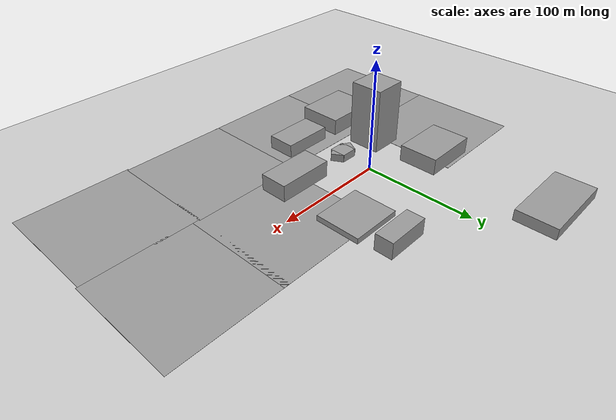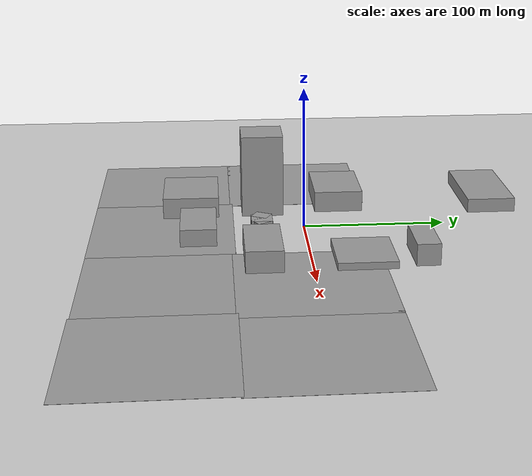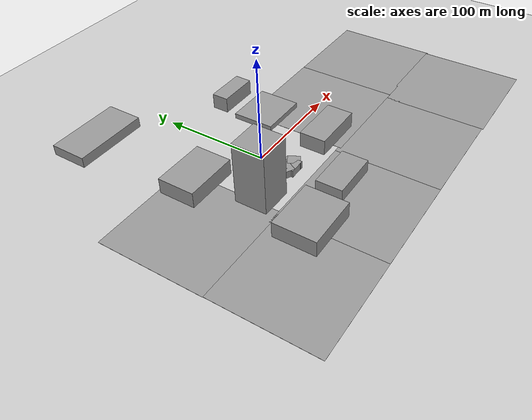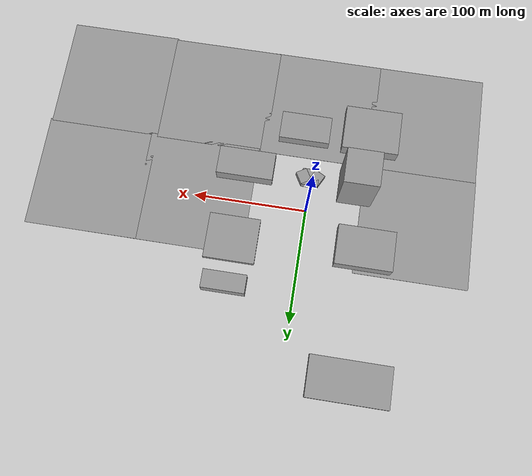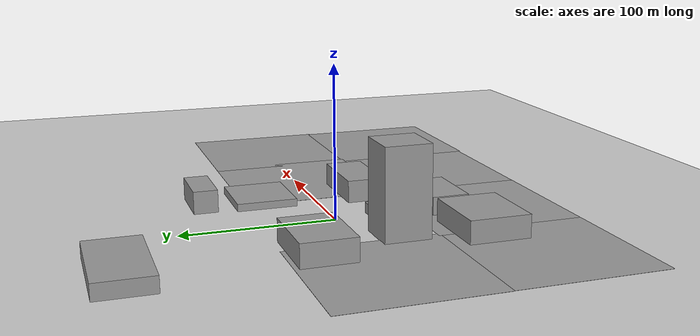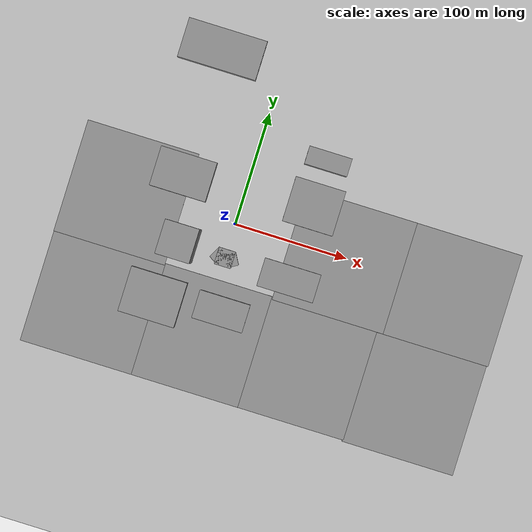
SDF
<sdf version="1.6">
 <world name="default">
  <model name="ground_plane">
   <static>1</static>
   <link name="link">
    <collision name="collision">
     <geometry><plane><normal>0 0 1</normal><size>100 100</size></plane></geometry>
     <surface><friction><ode><mu>100</mu><mu2>50</mu2></ode></friction></surface>
    </collision>
    <visual name="visual">
     <cast_shadows>0</cast_shadows>
     <geometry><plane><normal>0 0 1</normal><size>100 100</size></plane></geometry>
     <material>
      <script><uri>file://media/materials/scripts/gazebo.material</uri><name>Gazebo/Grey</name></script>
     </material>
    </visual>
   </link>
  </model>
  <model name="k2_kait_0">
   <link name="link_3">
    <inertial>
     <mass>1</mass>
     <inertia>
      <ixx>0.166667</ixx>
      <ixy>0</ixy>
      <ixz>0</ixz>
      <iyy>0.166667</iyy>
      <iyz>0</iyz>
      <izz>0.166667</izz>
     </inertia>
    </inertial>
    <visual name="visual">
     <pose>0 0 7.5 0 -0 0</pose>
     <geometry><box><size>50 35 15</size></box></geometry>
     <material>
      <lighting>1</lighting>
      <script><uri>file://media/materials/scripts/gazebo.material</uri><name>Gazebo/Grey</name></script>
      <shader type="vertex"><normal_map>__default__</normal_map></shader>
      <ambient>0.3 0.3 0.3 1</ambient>
      <diffuse>0.7 0.7 0.7 1</diffuse>
      <specular>0.01 0.01 0.01 1</specular>
      <emissive>0 0 0 1</emissive>
     </material>
    </visual>
    <collision name="collision">
     <geometry><box><size>1 1 1</size></box></geometry>
     <surface>
      <friction>
       <ode><mu>1</mu><mu2>1</mu2><fdir1>0 0 0</fdir1><slip1>0</slip1><slip2>0</slip2></ode>
       <torsional>
        <coefficient>1</coefficient>
        <patch_radius>0</patch_radius>
        <surface_radius>0</surface_radius>
        <use_patch_radius>1</use_patch_radius>
        <ode><slip>0</slip></ode>
       </torsional>
      </friction>
      <bounce><restitution_coefficient>0</restitution_coefficient><threshold>1e+06</threshold></bounce>
      <contact>
       <collide_without_contact>0</collide_without_contact>
       <collide_without_contact_bitmask>1</collide_without_contact_bitmask>
       <collide_bitmask>1</collide_bitmask>
       <ode>
        <soft_cfm>0</soft_cfm>
        <soft_erp>0.2</soft_erp>
        <kp>1e+13</kp>
        <kd>1</kd>
        <max_vel>0.01</max_vel>
        <min_depth>0</min_depth>
       </ode>
       <bullet>
        <split_impulse>1</split_impulse>
        <split_impulse_penetration_threshold>-0.01</split_impulse_penetration_threshold>
        <soft_cfm>0</soft_cfm>
        <soft_erp>0.2</soft_erp>
        <kp>1e+13</kp>
        <kd>1</kd>
       </bullet>
      </contact>
     </surface>
    </collision>
   </link>
   <static>0</static>
   <pose>-55 28 0 0 -0 0</pose>
  </model>
  <model name="sennsinn_test">
   <link name="link_6">
    <inertial>
     <mass>1</mass>
     <inertia>
      <ixx>0.166667</ixx>
      <ixy>0</ixy>
      <ixz>0</ixz>
      <iyy>0.166667</iyy>
      <iyz>0</iyz>
      <izz>0.166667</izz>
     </inertia>
    </inertial>
    <pose>-0.093395 0.01046 -0 0 -0 0</pose>
    <visual name="visual">
     <pose>0 0 3.5 0 -0 0</pose>
     <geometry><box><size>15 15 7</size></box></geometry>
     <material>
      <lighting>1</lighting>
      <script><uri>file://media/materials/scripts/gazebo.material</uri><name>Gazebo/Grey</name></script>
      <shader type="vertex"><normal_map>__default__</normal_map></shader>
      <ambient>0.3 0.3 0.3 1</ambient>
      <diffuse>0.7 0.7 0.7 1</diffuse>
      <specular>0.01 0.01 0.01 1</specular>
      <emissive>0 0 0 1</emissive>
     </material>
    </visual>
    <collision name="collision">
     <geometry><box><size>1 1 1</size></box></geometry>
     <surface>
      <friction>
       <ode><mu>1</mu><mu2>1</mu2><fdir1>0 0 0</fdir1><slip1>0</slip1><slip2>0</slip2></ode>
       <torsional>
        <coefficient>1</coefficient>
        <patch_radius>0</patch_radius>
        <surface_radius>0</surface_radius>
        <use_patch_radius>1</use_patch_radius>
        <ode><slip>0</slip></ode>
       </torsional>
      </friction>
      <bounce><restitution_coefficient>0</restitution_coefficient><threshold>1e+06</threshold></bounce>
      <contact>
       <collide_without_contact>0</collide_without_contact>
       <collide_without_contact_bitmask>1</collide_without_contact_bitmask>
       <collide_bitmask>1</collide_bitmask>
       <ode>
        <soft_cfm>0</soft_cfm>
        <soft_erp>0.2</soft_erp>
        <kp>1e+13</kp>
        <kd>1</kd>
        <max_vel>0.01</max_vel>
        <min_depth>0</min_depth>
       </ode>
       <bullet>
        <split_impulse>1</split_impulse>
        <split_impulse_penetration_threshold>-0.01</split_impulse_penetration_threshold>
        <soft_cfm>0</soft_cfm>
        <soft_erp>0.2</soft_erp>
        <kp>1e+13</kp>
        <kd>1</kd>
       </bullet>
      </contact>
     </surface>
    </collision>
   </link>
   <link name="link_7">
    <inertial>
     <mass>0.568879</mass>
     <inertia>
      <ixx>0.0627481</ixx>
      <ixy>0</ixy>
      <ixz>0</ixz>
      <iyy>0.0948131</iyy>
      <iyz>0</iyz>
      <izz>0.0627481</izz>
     </inertia>
    </inertial>
    <pose>5.89891 -0.113506 0 0 -0 0.523599</pose>
    <visual name="visual">
     <pose>0 0 3.5 0 -0 0</pose>
     <geometry><box><size>10 11.3774 7</size></box></geometry>
     <material>
      <lighting>1</lighting>
      <script><uri>file://media/materials/scripts/gazebo.material</uri><name>Gazebo/Grey</name></script>
      <shader type="vertex"><normal_map>__default__</normal_map></shader>
      <ambient>0.3 0.3 0.3 1</ambient>
      <diffuse>0.7 0.7 0.7 1</diffuse>
      <specular>0.01 0.01 0.01 1</specular>
      <emissive>0 0 0 1</emissive>
     </material>
    </visual>
    <collision name="collision">
     <geometry><box><size>1 0.568874 1</size></box></geometry>
     <surface>
      <friction>
       <ode><mu>1</mu><mu2>1</mu2><fdir1>0 0 0</fdir1><slip1>0</slip1><slip2>0</slip2></ode>
       <torsional>
        <coefficient>1</coefficient>
        <patch_radius>0</patch_radius>
        <surface_radius>0</surface_radius>
        <use_patch_radius>1</use_patch_radius>
        <ode><slip>0</slip></ode>
       </torsional>
      </friction>
      <bounce><restitution_coefficient>0</restitution_coefficient><threshold>1e+06</threshold></bounce>
      <contact>
       <collide_without_contact>0</collide_without_contact>
       <collide_without_contact_bitmask>1</collide_without_contact_bitmask>
       <collide_bitmask>1</collide_bitmask>
       <ode>
        <soft_cfm>0</soft_cfm>
        <soft_erp>0.2</soft_erp>
        <kp>1e+13</kp>
        <kd>1</kd>
        <max_vel>0.01</max_vel>
        <min_depth>0</min_depth>
       </ode>
       <bullet>
        <split_impulse>1</split_impulse>
        <split_impulse_penetration_threshold>-0.01</split_impulse_penetration_threshold>
        <soft_cfm>0</soft_cfm>
        <soft_erp>0.2</soft_erp>
        <kp>1e+13</kp>
        <kd>1</kd>
       </bullet>
      </contact>
     </surface>
    </collision>
   </link>
   <link name="link_7_clone">
    <inertial>
     <mass>0.587453</mass>
     <inertia>
      <ixx>0.0658484</ixx>
      <ixy>0</ixy>
      <ixz>0</ixz>
      <iyy>0.0979089</iyy>
      <iyz>0</iyz>
      <izz>0.0658484</izz>
     </inertia>
    </inertial>
    <pose>-5.78113 0.08849 -0 0 -0 -0.487185</pose>
    <visual name="visual">
     <pose>0 0 3.5 0 -0 0</pose>
     <geometry><box><size>10 11.7589 7</size></box></geometry>
     <material>
      <lighting>1</lighting>
      <script><uri>file://media/materials/scripts/gazebo.material</uri><name>Gazebo/Grey</name></script>
      <shader type="vertex"><normal_map>__default__</normal_map></shader>
      <ambient>0.3 0.3 0.3 1</ambient>
      <diffuse>0.7 0.7 0.7 1</diffuse>
      <specular>0.01 0.01 0.01 1</specular>
      <emissive>0 0 0 1</emissive>
     </material>
    </visual>
    <collision name="collision">
     <geometry><box><size>1 0.587448 1</size></box></geometry>
     <surface>
      <friction>
       <ode><mu>1</mu><mu2>1</mu2><fdir1>0 0 0</fdir1><slip1>0</slip1><slip2>0</slip2></ode>
       <torsional>
        <coefficient>1</coefficient>
        <patch_radius>0</patch_radius>
        <surface_radius>0</surface_radius>
        <use_patch_radius>1</use_patch_radius>
        <ode><slip>0</slip></ode>
       </torsional>
      </friction>
      <bounce><restitution_coefficient>0</restitution_coefficient><threshold>1e+06</threshold></bounce>
      <contact>
       <collide_without_contact>0</collide_without_contact>
       <collide_without_contact_bitmask>1</collide_without_contact_bitmask>
       <collide_bitmask>1</collide_bitmask>
       <ode>
        <soft_cfm>0</soft_cfm>
        <soft_erp>0.2</soft_erp>
        <kp>1e+13</kp>
        <kd>1</kd>
        <max_vel>0.01</max_vel>
        <min_depth>0</min_depth>
       </ode>
       <bullet>
        <split_impulse>1</split_impulse>
        <split_impulse_penetration_threshold>-0.01</split_impulse_penetration_threshold>
        <soft_cfm>0</soft_cfm>
        <soft_erp>0.2</soft_erp>
        <kp>1e+13</kp>
        <kd>1</kd>
       </bullet>
      </contact>
     </surface>
    </collision>
   </link>
   <static>0</static>
   <pose>0.08699 -29.9717 0.499996 0 -0 0</pose>
  </model>
  <model name="K4_ver1.1">
   <link name="link_0">
    <inertial>
     <mass>1</mass>
     <inertia>
      <ixx>0.166667</ixx>
      <ixy>0</ixy>
      <ixz>0</ixz>
      <iyy>0.166667</iyy>
      <iyz>0</iyz>
      <izz>0.166667</izz>
     </inertia>
    </inertial>
    <pose>18.3964 -92.7337 0 0 -0 0</pose>
    <visual name="visual">
     <pose>0 0 6 0 -0 0</pose>
     <geometry><box><size>45 25 12</size></box></geometry>
     <material>
      <lighting>1</lighting>
      <script><uri>file://media/materials/scripts/gazebo.material</uri><name>Gazebo/Grey</name></script>
      <shader type="vertex"><normal_map>__default__</normal_map></shader>
      <ambient>0.3 0.3 0.3 1</ambient>
      <diffuse>0.7 0.7 0.7 1</diffuse>
      <specular>0.01 0.01 0.01 1</specular>
      <emissive>0 0 0 1</emissive>
     </material>
    </visual>
    <collision name="collision">
     <geometry><box><size>1 1 1</size></box></geometry>
     <surface>
      <friction>
       <ode><mu>1</mu><mu2>1</mu2><fdir1>0 0 0</fdir1><slip1>0</slip1><slip2>0</slip2></ode>
       <torsional>
        <coefficient>1</coefficient>
        <patch_radius>0</patch_radius>
        <surface_radius>0</surface_radius>
        <use_patch_radius>1</use_patch_radius>
        <ode><slip>0</slip></ode>
       </torsional>
      </friction>
      <bounce><restitution_coefficient>0</restitution_coefficient><threshold>1e+06</threshold></bounce>
      <contact>
       <collide_without_contact>0</collide_without_contact>
       <collide_without_contact_bitmask>1</collide_without_contact_bitmask>
       <collide_bitmask>1</collide_bitmask>
       <ode>
        <soft_cfm>0</soft_cfm>
        <soft_erp>0.2</soft_erp>
        <kp>1e+13</kp>
        <kd>1</kd>
        <max_vel>0.01</max_vel>
        <min_depth>0</min_depth>
       </ode>
       <bullet>
        <split_impulse>1</split_impulse>
        <split_impulse_penetration_threshold>-0.01</split_impulse_penetration_threshold>
        <soft_cfm>0</soft_cfm>
        <soft_erp>0.2</soft_erp>
        <kp>1e+13</kp>
        <kd>1</kd>
       </bullet>
      </contact>
     </surface>
    </collision>
   </link>
   <static>0</static>
   <pose>-7.94214 18.1369 0 0 -0 0</pose>
  </model>
  <model name="D1_ver1.1">
   <link name="link_2">
    <inertial>
     <mass>1</mass>
     <inertia>
      <ixx>0.166667</ixx>
      <ixy>0</ixy>
      <ixz>0</ixz>
      <iyy>0.166667</iyy>
      <iyz>0</iyz>
      <izz>0.166667</izz>
     </inertia>
    </inertial>
    <pose>-1e-05 -3.9e-05 0 0 -0 0</pose>
    <visual name="visual">
     <pose>0 0 2.5 0 -0 0</pose>
     <geometry><box><size>45 40 5</size></box></geometry>
     <material>
      <lighting>1</lighting>
      <script><uri>file://media/materials/scripts/gazebo.material</uri><name>Gazebo/Grey</name></script>
      <shader type="vertex"><normal_map>__default__</normal_map></shader>
      <ambient>0.3 0.3 0.3 1</ambient>
      <diffuse>0.7 0.7 0.7 1</diffuse>
      <specular>0.01 0.01 0.01 1</specular>
      <emissive>0 0 0 1</emissive>
     </material>
    </visual>
    <collision name="collision">
     <geometry><box><size>1 1 1</size></box></geometry>
     <surface>
      <friction>
       <ode><mu>1</mu><mu2>1</mu2><fdir1>0 0 0</fdir1><slip1>0</slip1><slip2>0</slip2></ode>
       <torsional>
        <coefficient>1</coefficient>
        <patch_radius>0</patch_radius>
        <surface_radius>0</surface_radius>
        <use_patch_radius>1</use_patch_radius>
        <ode><slip>0</slip></ode>
       </torsional>
      </friction>
      <bounce><restitution_coefficient>0</restitution_coefficient><threshold>1e+06</threshold></bounce>
      <contact>
       <collide_without_contact>0</collide_without_contact>
       <collide_without_contact_bitmask>1</collide_without_contact_bitmask>
       <collide_bitmask>1</collide_bitmask>
       <ode>
        <soft_cfm>0</soft_cfm>
        <soft_erp>0.2</soft_erp>
        <kp>1e+13</kp>
        <kd>1</kd>
        <max_vel>0.01</max_vel>
        <min_depth>0</min_depth>
       </ode>
       <bullet>
        <split_impulse>1</split_impulse>
        <split_impulse_penetration_threshold>-0.01</split_impulse_penetration_threshold>
        <soft_cfm>0</soft_cfm>
        <soft_erp>0.2</soft_erp>
        <kp>1e+13</kp>
        <kd>1</kd>
       </bullet>
      </contact>
     </surface>
    </collision>
   </link>
   <static>0</static>
   <pose>60 35 0 0 -0 0</pose>
  </model>
  <model name="k1_kait">
   <link name="link_4">
    <inertial>
     <mass>1</mass>
     <inertia>
      <ixx>0.166667</ixx>
      <ixy>0</ixy>
      <ixz>0</ixz>
      <iyy>0.166667</iyy>
      <iyz>0</iyz>
      <izz>0.166667</izz>
     </inertia>
    </inertial>
    <visual name="visual">
     <pose>0 0 29 0 -0 0</pose>
     <geometry><box><size>30 30 60</size></box></geometry>
     <material>
      <lighting>1</lighting>
      <script><uri>file://media/materials/scripts/gazebo.material</uri><name>Gazebo/Grey</name></script>
      <shader type="vertex"><normal_map>__default__</normal_map></shader>
      <ambient>0.3 0.3 0.3 1</ambient>
      <diffuse>0.7 0.7 0.7 1</diffuse>
      <specular>0.01 0.01 0.01 1</specular>
      <emissive>0 0 0 1</emissive>
     </material>
    </visual>
    <collision name="collision">
     <geometry><box><size>1 1 1</size></box></geometry>
     <surface>
      <friction>
       <ode><mu>1</mu><mu2>1</mu2><fdir1>0 0 0</fdir1><slip1>0</slip1><slip2>0</slip2></ode>
       <torsional>
        <coefficient>1</coefficient>
        <patch_radius>0</patch_radius>
        <surface_radius>0</surface_radius>
        <use_patch_radius>1</use_patch_radius>
        <ode><slip>0</slip></ode>
       </torsional>
      </friction>
      <bounce><restitution_coefficient>0</restitution_coefficient><threshold>1e+06</threshold></bounce>
      <contact>
       <collide_without_contact>0</collide_without_contact>
       <collide_without_contact_bitmask>1</collide_without_contact_bitmask>
       <collide_bitmask>1</collide_bitmask>
       <ode>
        <soft_cfm>0</soft_cfm>
        <soft_erp>0.2</soft_erp>
        <kp>1e+13</kp>
        <kd>1</kd>
        <max_vel>0.01</max_vel>
        <min_depth>0</min_depth>
       </ode>
       <bullet>
        <split_impulse>1</split_impulse>
        <split_impulse_penetration_threshold>-0.01</split_impulse_penetration_threshold>
        <soft_cfm>0</soft_cfm>
        <soft_erp>0.2</soft_erp>
        <kp>1e+13</kp>
        <kd>1</kd>
       </bullet>
      </contact>
     </surface>
    </collision>
   </link>
   <static>0</static>
   <pose>-41 -28 0 0 -0 0</pose>
  </model>
  <model name="B5_kait">
   <link name="link_2">
    <inertial>
     <mass>1</mass>
     <inertia>
      <ixx>0.166667</ixx>
      <ixy>0</ixy>
      <ixz>0</ixz>
      <iyy>0.166667</iyy>
      <iyz>0</iyz>
      <izz>0.166667</izz>
     </inertia>
    </inertial>
    <pose>-2.1e-05 -4.5e-05 0 0 -0 0</pose>
    <visual name="visual">
     <pose>0 0 7.5 0 -0 0</pose>
     <geometry><box><size>50 25 15</size></box></geometry>
     <material>
      <lighting>1</lighting>
      <script><uri>file://media/materials/scripts/gazebo.material</uri><name>Gazebo/Grey</name></script>
      <shader type="vertex"><normal_map>__default__</normal_map></shader>
      <ambient>0.3 0.3 0.3 1</ambient>
      <diffuse>0.7 0.7 0.7 1</diffuse>
      <specular>0.01 0.01 0.01 1</specular>
      <emissive>0 0 0 1</emissive>
     </material>
    </visual>
    <collision name="collision">
     <geometry><box><size>1 1 1</size></box></geometry>
     <surface>
      <friction>
       <ode><mu>1</mu><mu2>1</mu2><fdir1>0 0 0</fdir1><slip1>0</slip1><slip2>0</slip2></ode>
       <torsional>
        <coefficient>1</coefficient>
        <patch_radius>0</patch_radius>
        <surface_radius>0</surface_radius>
        <use_patch_radius>1</use_patch_radius>
        <ode><slip>0</slip></ode>
       </torsional>
      </friction>
      <bounce><restitution_coefficient>0</restitution_coefficient><threshold>1e+06</threshold></bounce>
      <contact>
       <collide_without_contact>0</collide_without_contact>
       <collide_without_contact_bitmask>1</collide_without_contact_bitmask>
       <collide_bitmask>1</collide_bitmask>
       <ode>
        <soft_cfm>0</soft_cfm>
        <soft_erp>0.2</soft_erp>
        <kp>1e+13</kp>
        <kd>1</kd>
        <max_vel>0.01</max_vel>
        <min_depth>0</min_depth>
       </ode>
       <bullet>
        <split_impulse>1</split_impulse>
        <split_impulse_penetration_threshold>-0.01</split_impulse_penetration_threshold>
        <soft_cfm>0</soft_cfm>
        <soft_erp>0.2</soft_erp>
        <kp>1e+13</kp>
        <kd>1</kd>
       </bullet>
      </contact>
     </surface>
    </collision>
   </link>
   <static>0</static>
   <pose>58 -32 0 0 -0 0</pose>
  </model>
  <model name="D3_kait">
   <link name="link_3">
    <inertial>
     <mass>1</mass>
     <inertia>
      <ixx>0.166667</ixx>
      <ixy>0</ixy>
      <ixz>0</ixz>
      <iyy>0.166667</iyy>
      <iyz>0</iyz>
      <izz>0.166667</izz>
     </inertia>
    </inertial>
    <pose>0 -3e-06 0 0 -0 0</pose>
    <visual name="visual">
     <pose>0 0 7.5 0 -0 0</pose>
     <geometry><box><size>38 16 15</size></box></geometry>
     <material>
      <lighting>1</lighting>
      <script><uri>file://media/materials/scripts/gazebo.material</uri><name>Gazebo/Grey</name></script>
      <shader type="vertex"><normal_map>__default__</normal_map></shader>
      <ambient>0.3 0.3 0.3 1</ambient>
      <diffuse>0.7 0.7 0.7 1</diffuse>
      <specular>0.01 0.01 0.01 1</specular>
      <emissive>0 0 0 1</emissive>
     </material>
    </visual>
    <collision name="collision">
     <geometry><box><size>1 1 1</size></box></geometry>
     <surface>
      <friction>
       <ode><mu>1</mu><mu2>1</mu2><fdir1>0 0 0</fdir1><slip1>0</slip1><slip2>0</slip2></ode>
       <torsional>
        <coefficient>1</coefficient>
        <patch_radius>0</patch_radius>
        <surface_radius>0</surface_radius>
        <use_patch_radius>1</use_patch_radius>
        <ode><slip>0</slip></ode>
       </torsional>
      </friction>
      <bounce><restitution_coefficient>0</restitution_coefficient><threshold>1e+06</threshold></bounce>
      <contact>
       <collide_without_contact>0</collide_without_contact>
       <collide_without_contact_bitmask>1</collide_without_contact_bitmask>
       <collide_bitmask>1</collide_bitmask>
       <ode>
        <soft_cfm>0</soft_cfm>
        <soft_erp>0.2</soft_erp>
        <kp>1e+13</kp>
        <kd>1</kd>
        <max_vel>0.01</max_vel>
        <min_depth>0</min_depth>
       </ode>
       <bullet>
        <split_impulse>1</split_impulse>
        <split_impulse_penetration_threshold>-0.01</split_impulse_penetration_threshold>
        <soft_cfm>0</soft_cfm>
        <soft_erp>0.2</soft_erp>
        <kp>1e+13</kp>
        <kd>1</kd>
       </bullet>
      </contact>
     </surface>
    </collision>
   </link>
   <static>0</static>
   <pose>60 75 0 0 -0 0</pose>
  </model>
  <model name="ground_plane_0">
   <static>1</static>
   <link name="link">
    <collision name="collision">
     <geometry><plane><normal>0 0 1</normal><size>100 100</size></plane></geometry>
     <surface><friction><ode><mu>100</mu><mu2>50</mu2></ode></friction></surface>
    </collision>
    <visual name="visual">
     <cast_shadows>0</cast_shadows>
     <geometry><plane><normal>0 0 1</normal><size>100 100</size></plane></geometry>
     <material>
      <script><uri>file://media/materials/scripts/gazebo.material</uri><name>Gazebo/Grey</name></script>
     </material>
    </visual>
   </link>
   <pose>99.1855 -2.28274 0 0 -0 0</pose>
  </model>
  <model name="ground_plane_3">
   <static>1</static>
   <link name="link">
    <collision name="collision">
     <geometry><plane><normal>0 0 1</normal><size>100 100</size></plane></geometry>
     <surface><friction><ode><mu>100</mu><mu2>50</mu2></ode></friction></surface>
    </collision>
    <visual name="visual">
     <cast_shadows>0</cast_shadows>
     <geometry><plane><normal>0 0 1</normal><size>100 100</size></plane></geometry>
     <material>
      <script><uri>file://media/materials/scripts/gazebo.material</uri><name>Gazebo/Grey</name></script>
     </material>
    </visual>
   </link>
   <pose>-97.6709 -1.47219 0 0 -0 0</pose>
  </model>
  <model name="ground_plane_10">
   <static>1</static>
   <link name="link">
    <collision name="collision">
     <geometry><plane><normal>0 0 1</normal><size>100 100</size></plane></geometry>
     <surface><friction><ode><mu>100</mu><mu2>50</mu2></ode></friction></surface>
    </collision>
    <visual name="visual">
     <cast_shadows>0</cast_shadows>
     <geometry><plane><normal>0 0 1</normal><size>100 100</size></plane></geometry>
     <material>
      <script><uri>file://media/materials/scripts/gazebo.material</uri><name>Gazebo/Grey</name></script>
     </material>
    </visual>
   </link>
   <pose>193.772 -2.35308 0 0 -0 0</pose>
  </model>
  <model name="ground_plane_11">
   <static>1</static>
   <link name="link">
    <collision name="collision">
     <geometry><plane><normal>0 0 1</normal><size>100 100</size></plane></geometry>
     <surface><friction><ode><mu>100</mu><mu2>50</mu2></ode></friction></surface>
    </collision>
    <visual name="visual">
     <cast_shadows>0</cast_shadows>
     <geometry><plane><normal>0 0 1</normal><size>100 100</size></plane></geometry>
     <material>
      <script><uri>file://media/materials/scripts/gazebo.material</uri><name>Gazebo/Grey</name></script>
     </material>
    </visual>
   </link>
   <pose>-97.3591 -99.7033 0 0 -0 0</pose>
  </model>
  <model name="ground_plane_12">
   <static>1</static>
   <link name="link">
    <collision name="collision">
     <geometry><plane><normal>0 0 1</normal><size>100 100</size></plane></geometry>
     <surface><friction><ode><mu>100</mu><mu2>50</mu2></ode></friction></surface>
    </collision>
    <visual name="visual">
     <cast_shadows>0</cast_shadows>
     <geometry><plane><normal>0 0 1</normal><size>100 100</size></plane></geometry>
     <material>
      <script><uri>file://media/materials/scripts/gazebo.material</uri><name>Gazebo/Grey</name></script>
     </material>
    </visual>
   </link>
   <pose>-1.52672 -99.7093 0 0 -0 0</pose>
  </model>
  <model name="ground_plane_13">
   <static>1</static>
   <link name="link">
    <collision name="collision">
     <geometry><plane><normal>0 0 1</normal><size>100 100</size></plane></geometry>
     <surface><friction><ode><mu>100</mu><mu2>50</mu2></ode></friction></surface>
    </collision>
    <visual name="visual">
     <cast_shadows>0</cast_shadows>
     <geometry><plane><normal>0 0 1</normal><size>100 100</size></plane></geometry>
     <material>
      <script><uri>file://media/materials/scripts/gazebo.material</uri><name>Gazebo/Grey</name></script>
     </material>
    </visual>
   </link>
   <pose>93.6174 -99.606 0 0 -0 0</pose>
  </model>
  <model name="ground_plane_14">
   <static>1</static>
   <link name="link">
    <collision name="collision">
     <geometry><plane><normal>0 0 1</normal><size>100 100</size></plane></geometry>
     <surface><friction><ode><mu>100</mu><mu2>50</mu2></ode></friction></surface>
    </collision>
    <visual name="visual">
     <cast_shadows>0</cast_shadows>
     <geometry><plane><normal>0 0 1</normal><size>100 100</size></plane></geometry>
     <material>
      <script><uri>file://media/materials/scripts/gazebo.material</uri><name>Gazebo/Grey</name></script>
     </material>
    </visual>
   </link>
   <pose>192.416 -100.75 0 0 -0 0</pose>
  </model>
  <model name="k3_kait">
   <link name="link_5">
    <inertial>
     <mass>1</mass>
     <inertia>
      <ixx>0.166667</ixx>
      <ixy>0</ixy>
      <ixz>0</ixz>
      <iyy>0.166667</iyy>
      <iyz>0</iyz>
      <izz>0.166667</izz>
     </inertia>
    </inertial>
    <visual name="visual">
     <pose>0 0 7.5 0 -0 0</pose>
     <geometry><box><size>50 40 15</size></box></geometry>
     <material>
      <lighting>1</lighting>
      <script><uri>file://media/materials/scripts/gazebo.material</uri><name>Gazebo/Grey</name></script>
      <shader type="vertex"><normal_map>__default__</normal_map></shader>
      <ambient>0.3 0.3 0.3 1</ambient>
      <diffuse>0.7 0.7 0.7 1</diffuse>
      <specular>0.01 0.01 0.01 1</specular>
      <emissive>0 0 0 1</emissive>
     </material>
    </visual>
    <collision name="collision">
     <geometry><box><size>1 1 1</size></box></geometry>
     <surface>
      <friction>
       <ode><mu>1</mu><mu2>1</mu2><fdir1>0 0 0</fdir1><slip1>0</slip1><slip2>0</slip2></ode>
       <torsional>
        <coefficient>1</coefficient>
        <patch_radius>0</patch_radius>
        <surface_radius>0</surface_radius>
        <use_patch_radius>1</use_patch_radius>
        <ode><slip>0</slip></ode>
       </torsional>
      </friction>
      <bounce><restitution_coefficient>0</restitution_coefficient><threshold>1e+06</threshold></bounce>
      <contact>
       <collide_without_contact>0</collide_without_contact>
       <collide_without_contact_bitmask>1</collide_without_contact_bitmask>
       <collide_bitmask>1</collide_bitmask>
       <ode>
        <soft_cfm>0</soft_cfm>
        <soft_erp>0.2</soft_erp>
        <kp>1e+13</kp>
        <kd>1</kd>
        <max_vel>0.01</max_vel>
        <min_depth>0</min_depth>
       </ode>
       <bullet>
        <split_impulse>1</split_impulse>
        <split_impulse_penetration_threshold>-0.01</split_impulse_penetration_threshold>
        <soft_cfm>0</soft_cfm>
        <soft_erp>0.2</soft_erp>
        <kp>1e+13</kp>
        <kd>1</kd>
       </bullet>
      </contact>
     </surface>
    </collision>
   </link>
   <static>0</static>
   <pose>-48.8332 -80 0 4e-06 -0 0</pose>
  </model>
  <model name="c5_kait">
   <link name="link_0">
    <inertial>
     <mass>1</mass>
     <inertia>
      <ixx>0.166667</ixx>
      <ixy>0</ixy>
      <ixz>0</ixz>
      <iyy>0.166667</iyy>
      <iyz>0</iyz>
      <izz>0.166667</izz>
     </inertia>
    </inertial>
    <pose>-60 140 0 0 -0 0</pose>
    <visual name="visual">
     <pose>0 0 5 0 -0 0</pose>
     <geometry><box><size>70 35 10</size></box></geometry>
     <material>
      <lighting>1</lighting>
      <script><uri>file://media/materials/scripts/gazebo.material</uri><name>Gazebo/Grey</name></script>
      <shader type="vertex"><normal_map>__default__</normal_map></shader>
      <ambient>0.3 0.3 0.3 1</ambient>
      <diffuse>0.7 0.7 0.7 1</diffuse>
      <specular>0.01 0.01 0.01 1</specular>
      <emissive>0 0 0 1</emissive>
     </material>
    </visual>
    <collision name="collision">
     <geometry><box><size>1.4097 1.33952 1.47841</size></box></geometry>
     <surface>
      <friction>
       <ode><mu>1</mu><mu2>1</mu2><fdir1>0 0 0</fdir1><slip1>0</slip1><slip2>0</slip2></ode>
       <torsional>
        <coefficient>1</coefficient>
        <patch_radius>0</patch_radius>
        <surface_radius>0</surface_radius>
        <use_patch_radius>1</use_patch_radius>
        <ode><slip>0</slip></ode>
       </torsional>
      </friction>
      <bounce><restitution_coefficient>0</restitution_coefficient><threshold>1e+06</threshold></bounce>
      <contact>
       <collide_without_contact>0</collide_without_contact>
       <collide_without_contact_bitmask>1</collide_without_contact_bitmask>
       <collide_bitmask>1</collide_bitmask>
       <ode>
        <soft_cfm>0</soft_cfm>
        <soft_erp>0.2</soft_erp>
        <kp>1e+13</kp>
        <kd>1</kd>
        <max_vel>0.01</max_vel>
        <min_depth>0</min_depth>
       </ode>
       <bullet>
        <split_impulse>1</split_impulse>
        <split_impulse_penetration_threshold>-0.01</split_impulse_penetration_threshold>
        <soft_cfm>0</soft_cfm>
        <soft_erp>0.2</soft_erp>
        <kp>1e+13</kp>
        <kd>1</kd>
       </bullet>
      </contact>
     </surface>
    </collision>
   </link>
   <static>0</static>
   <pose>5.0027 0.108996 0 0 -0 0</pose>
  </model>
 </world>
</sdf>
